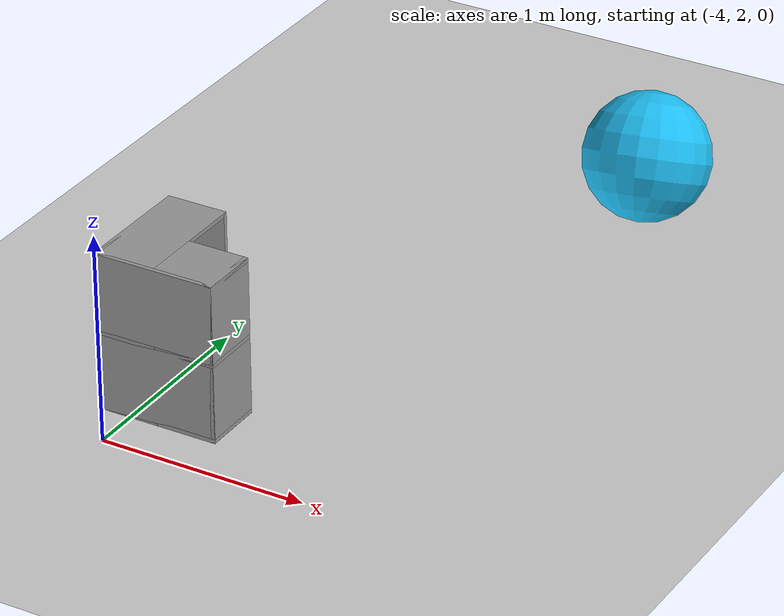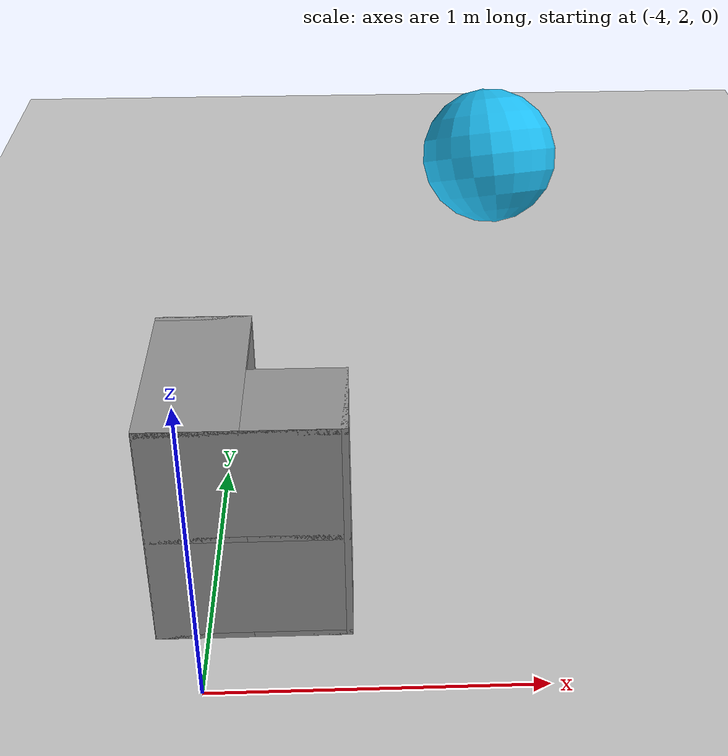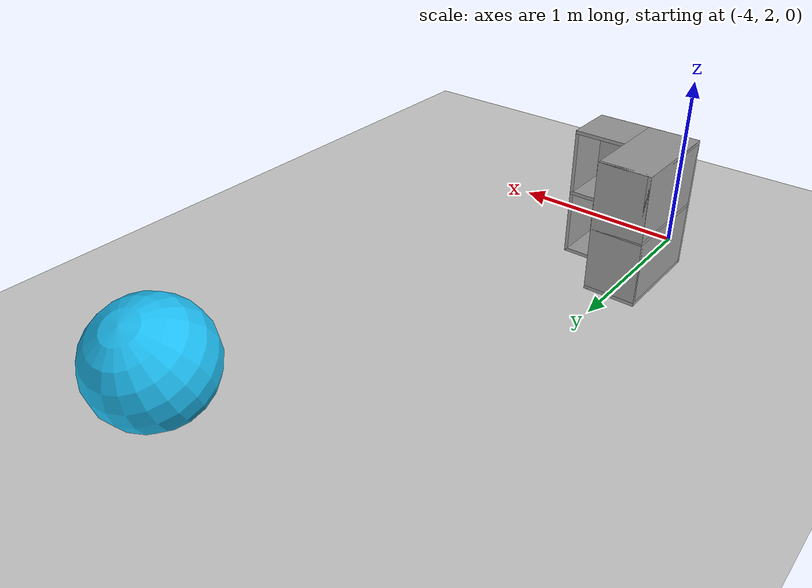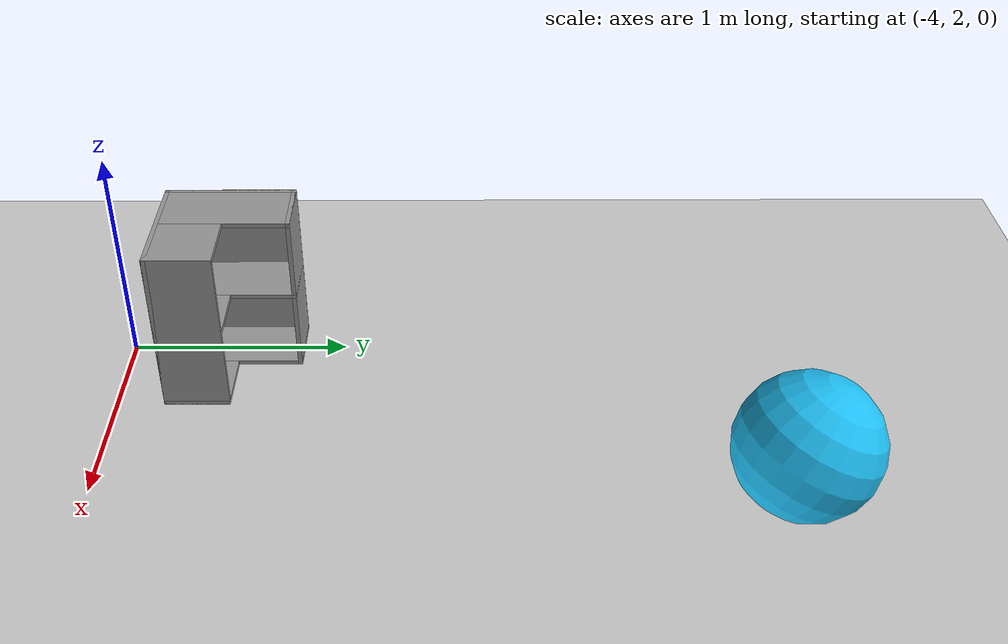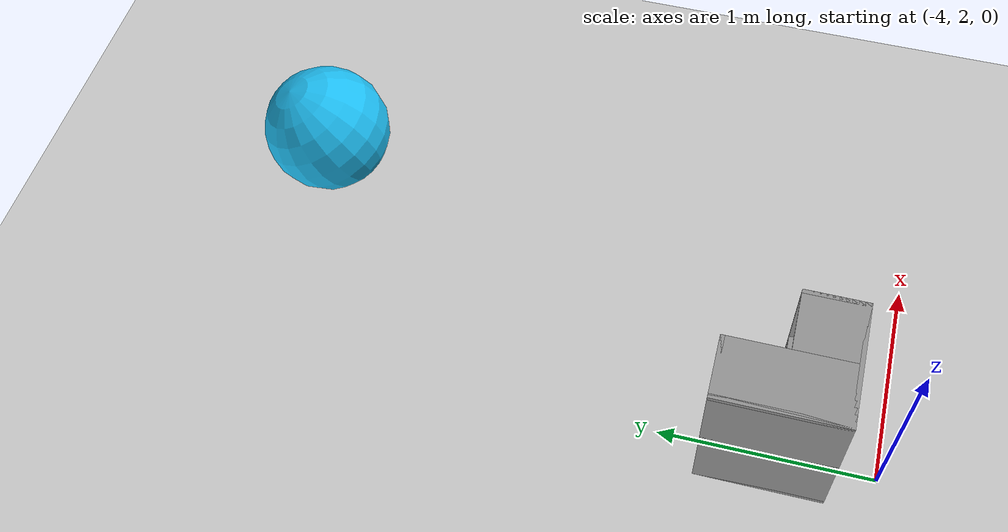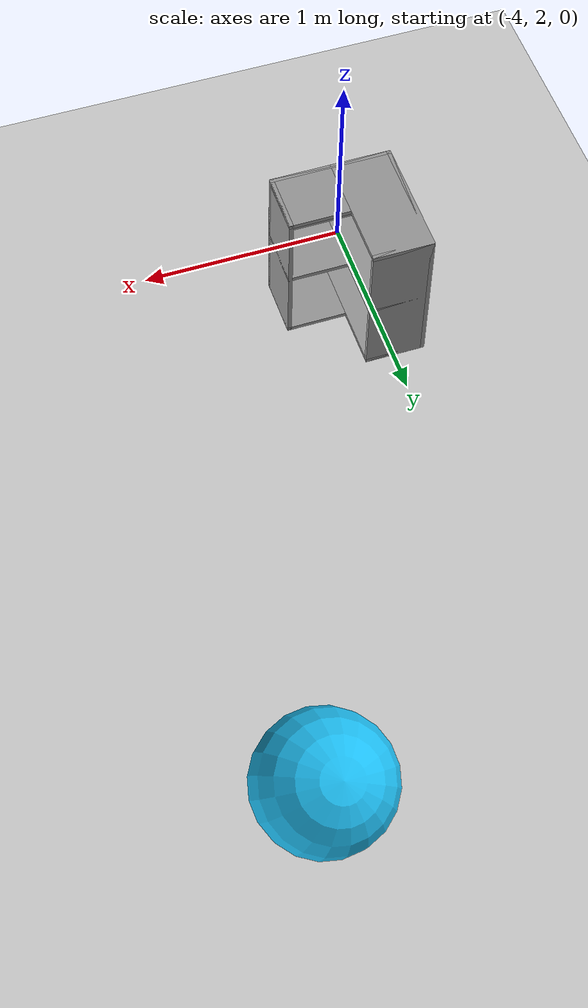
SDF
<sdf version="1.7">
 <world name="default">
  <model name="ground_plane">
   <static>1</static>
   <link name="link">
    <collision name="collision">
     <geometry><plane><normal>0 0 1</normal><size>100 100</size></plane></geometry>
     <surface><friction><ode><mu>100</mu><mu2>50</mu2></ode></friction></surface>
    </collision>
    <visual name="visual">
     <cast_shadows>0</cast_shadows>
     <geometry><plane><normal>0 0 1</normal><size>100 100</size></plane></geometry>
     <material>
      <script><uri>file://media/materials/scripts/gazebo.material</uri><name>Gazebo/Grey</name></script>
     </material>
    </visual>
   </link>
  </model>
  <model name="Wall_Cabinet_Coin_24x30W">
   <link name="Wall_10">
    <pose>0.286 -0.148 0.384 0 -0 0</pose>
    <inertial>
     <mass>2.1259</mass>
     <inertia><ixx>0.0158</ixx><iyy>0.1202</iyy><izz>0.1046</izz><ixy>0</ixy><ixz>0</ixz><iyz>0</iyz></inertia>
    </inertial>
    <collision name="Wall_10_Collision"><geometry><box><size>0.02 0.296 0.768</size></box></geometry></collision>
    <visual name="Wall_10_Visual">
     <geometry><box><size>0.02 0.296 0.768</size></box></geometry>
     <material>
      <script><uri>file://media/materials/scripts/gazebo.material</uri><name>Gazebo/Grey</name></script>
      <ambient>1 1 1 1</ambient>
     </material>
    </visual>
   </link>
   <joint name="10_16" type="fixed">
    <pose>0 0 -0.374 0 -0 0</pose>
    <parent>Wall_16</parent>
    <child>Wall_10</child>
    <axis><xyz>1 0 0</xyz><limit><lower>-1e+16</lower><upper>1e+16</upper></limit></axis>
   </joint>
   <joint name="10_14" type="fixed">
    <parent>Wall_14</parent>
    <child>Wall_10</child>
    <axis><xyz>1 0 0</xyz><limit><lower>-1e+16</lower><upper>1e+16</upper></limit></axis>
   </joint>
   <joint name="10_12" type="fixed">
    <pose>0 0 0.374 0 -0 0</pose>
    <parent>Wall_12</parent>
    <child>Wall_10</child>
    <axis><xyz>1 0 0</xyz><limit><lower>-1e+16</lower><upper>1e+16</upper></limit></axis>
   </joint>
   <joint name="10_29" type="fixed">
    <pose>0 -0.148 0 0 -0 0</pose>
    <parent>Wall_29</parent>
    <child>Wall_10</child>
    <axis><xyz>1 0 0</xyz><limit><lower>-1e+16</lower><upper>1e+16</upper></limit></axis>
   </joint>
   <link name="Wall_12">
    <pose>0.148 -0.148 0.758 0 -0 0</pose>
    <inertial>
     <mass>0.8802</mass>
     <inertia><ixx>0.0065</ixx><iyy>0.0139</iyy><izz>0.0074</izz><ixy>0</ixy><ixz>0</ixz><iyz>0</iyz></inertia>
    </inertial>
    <collision name="Wall_12_Collision"><geometry><box><size>0.296 0.296 0.02</size></box></geometry></collision>
    <visual name="Wall_12_Visual">
     <geometry><box><size>0.296 0.296 0.02</size></box></geometry>
     <material>
      <script><uri>file://media/materials/scripts/gazebo.material</uri><name>Gazebo/Grey</name></script>
      <ambient>1 1 1 1</ambient>
     </material>
    </visual>
   </link>
   <joint name="12_29" type="fixed">
    <pose>0 -0.148 0 0 -0 0</pose>
    <parent>Wall_29</parent>
    <child>Wall_12</child>
    <axis><xyz>0 0 1</xyz><limit><lower>-1e+16</lower><upper>1e+16</upper></limit></axis>
   </joint>
   <link name="Wall_14">
    <pose>0.148 -0.148 0.384 0 -0 0</pose>
    <inertial>
     <mass>0.8802</mass>
     <inertia><ixx>0.0065</ixx><iyy>0.0139</iyy><izz>0.0074</izz><ixy>0</ixy><ixz>0</ixz><iyz>0</iyz></inertia>
    </inertial>
    <collision name="Wall_14_Collision"><geometry><box><size>0.296 0.296 0.02</size></box></geometry></collision>
    <visual name="Wall_14_Visual">
     <geometry><box><size>0.296 0.296 0.02</size></box></geometry>
     <material>
      <script><uri>file://media/materials/scripts/gazebo.material</uri><name>Gazebo/Grey</name></script>
      <ambient>1 1 1 1</ambient>
     </material>
    </visual>
   </link>
   <joint name="14_29" type="fixed">
    <pose>0 -0.148 0 0 -0 0</pose>
    <parent>Wall_29</parent>
    <child>Wall_14</child>
    <axis><xyz>0 1 0</xyz><limit><lower>-1e+16</lower><upper>1e+16</upper></limit></axis>
   </joint>
   <link name="Wall_16">
    <pose>0.148 -0.148 0.01 0 -0 0</pose>
    <inertial>
     <mass>0.8802</mass>
     <inertia><ixx>0.0065</ixx><iyy>0.0139</iyy><izz>0.0074</izz><ixy>0</ixy><ixz>0</ixz><iyz>0</iyz></inertia>
    </inertial>
    <collision name="Wall_16_Collision"><geometry><box><size>0.296 0.296 0.02</size></box></geometry></collision>
    <visual name="Wall_16_Visual">
     <geometry><box><size>0.296 0.296 0.02</size></box></geometry>
     <material>
      <script><uri>file://media/materials/scripts/gazebo.material</uri><name>Gazebo/Grey</name></script>
      <ambient>1 1 1 1</ambient>
     </material>
    </visual>
   </link>
   <joint name="16_29" type="fixed">
    <pose>0 -0.148 0 0 -0 0</pose>
    <parent>Wall_29</parent>
    <child>Wall_16</child>
    <axis><xyz>0 1 0</xyz><limit><lower>-1e+16</lower><upper>1e+16</upper></limit></axis>
   </joint>
   <link name="Wall_18">
    <pose>-0.148 0 0.01 0 -0 0</pose>
    <inertial>
     <mass>1.6525</mass>
     <inertia><ixx>0.0491</ixx><iyy>0.0613</iyy><izz>0.0123</izz><ixy>0</ixy><ixz>0</ixz><iyz>0</iyz></inertia>
    </inertial>
    <collision name="Wall_18_Collision"><geometry><box><size>0.296 0.592 0.02</size></box></geometry></collision>
    <visual name="Wall_18_Visual">
     <geometry><box><size>0.296 0.592 0.02</size></box></geometry>
     <material>
      <script><uri>file://media/materials/scripts/gazebo.material</uri><name>Gazebo/Grey</name></script>
      <ambient>1 1 1 1</ambient>
     </material>
    </visual>
   </link>
   <joint name="18_16" type="fixed">
    <pose>0.148 -0.148 0 0 -0 0</pose>
    <parent>Wall_16</parent>
    <child>Wall_18</child>
    <axis><xyz>1 0 0</xyz><limit><lower>-1e+16</lower><upper>1e+16</upper></limit></axis>
   </joint>
   <joint name="18_29" type="fixed">
    <pose>0 -0.296 0 0 -0 0</pose>
    <parent>Wall_29</parent>
    <child>Wall_18</child>
    <axis><xyz>0 1 0</xyz><limit><lower>-1e+16</lower><upper>1e+16</upper></limit></axis>
   </joint>
   <joint name="18_27" type="fixed">
    <pose>-0.148 0 0 0 -0 0</pose>
    <parent>Wall_27</parent>
    <child>Wall_18</child>
    <axis><xyz>1 0 0</xyz><limit><lower>-1e+16</lower><upper>1e+16</upper></limit></axis>
   </joint>
   <joint name="18_30" type="fixed">
    <pose>0 0.296 0 0 -0 0</pose>
    <parent>Wall_30</parent>
    <child>Wall_18</child>
    <axis><xyz>0 1 0</xyz><limit><lower>-1e+16</lower><upper>1e+16</upper></limit></axis>
   </joint>
   <link name="Wall_20">
    <pose>-0.148 0 0.384 0 -0 0</pose>
    <inertial>
     <mass>1.6525</mass>
     <inertia><ixx>0.0491</ixx><iyy>0.0613</iyy><izz>0.0123</izz><ixy>0</ixy><ixz>0</ixz><iyz>0</iyz></inertia>
    </inertial>
    <collision name="Wall_20_Collision"><geometry><box><size>0.296 0.592 0.02</size></box></geometry></collision>
    <visual name="Wall_20_Visual">
     <geometry><box><size>0.296 0.592 0.02</size></box></geometry>
     <material>
      <script><uri>file://media/materials/scripts/gazebo.material</uri><name>Gazebo/Grey</name></script>
      <ambient>1 1 1 1</ambient>
     </material>
    </visual>
   </link>
   <joint name="20_14" type="fixed">
    <pose>0.148 -0.148 0 0 -0 0</pose>
    <parent>Wall_14</parent>
    <child>Wall_20</child>
    <axis><xyz>1 0 0</xyz><limit><lower>-1e+16</lower><upper>1e+16</upper></limit></axis>
   </joint>
   <joint name="20_29" type="fixed">
    <pose>0 -0.296 0 0 -0 0</pose>
    <parent>Wall_29</parent>
    <child>Wall_20</child>
    <axis><xyz>0 1 0</xyz><limit><lower>-1e+16</lower><upper>1e+16</upper></limit></axis>
   </joint>
   <joint name="20_27" type="fixed">
    <pose>-0.148 0 0 0 -0 0</pose>
    <parent>Wall_27</parent>
    <child>Wall_20</child>
    <axis><xyz>1 0 0</xyz><limit><lower>-1e+16</lower><upper>1e+16</upper></limit></axis>
   </joint>
   <joint name="20_30" type="fixed">
    <pose>0 0.296 0 0 -0 0</pose>
    <parent>Wall_30</parent>
    <child>Wall_20</child>
    <axis><xyz>0 1 0</xyz><limit><lower>-1e+16</lower><upper>1e+16</upper></limit></axis>
   </joint>
   <link name="Wall_22">
    <pose>-0.148 0 0.758 0 -0 0</pose>
    <inertial>
     <mass>1.6525</mass>
     <inertia><ixx>0.0491</ixx><iyy>0.0613</iyy><izz>0.0123</izz><ixy>0</ixy><ixz>0</ixz><iyz>0</iyz></inertia>
    </inertial>
    <collision name="Wall_22_Collision"><geometry><box><size>0.296 0.592 0.02</size></box></geometry></collision>
    <visual name="Wall_22_Visual">
     <geometry><box><size>0.296 0.592 0.02</size></box></geometry>
     <material>
      <script><uri>file://media/materials/scripts/gazebo.material</uri><name>Gazebo/Grey</name></script>
      <ambient>1 1 1 1</ambient>
     </material>
    </visual>
   </link>
   <joint name="22_12" type="fixed">
    <pose>0.148 -0.148 0 0 -0 0</pose>
    <parent>Wall_12</parent>
    <child>Wall_22</child>
    <axis><xyz>1 0 0</xyz><limit><lower>-1e+16</lower><upper>1e+16</upper></limit></axis>
   </joint>
   <joint name="22_29" type="fixed">
    <pose>0 -0.296 0 0 -0 0</pose>
    <parent>Wall_29</parent>
    <child>Wall_22</child>
    <axis><xyz>0 1 0</xyz><limit><lower>-1e+16</lower><upper>1e+16</upper></limit></axis>
   </joint>
   <joint name="22_27" type="fixed">
    <pose>-0.148 0 0 0 -0 0</pose>
    <parent>Wall_27</parent>
    <child>Wall_22</child>
    <axis><xyz>1 0 0</xyz><limit><lower>-1e+16</lower><upper>1e+16</upper></limit></axis>
   </joint>
   <joint name="22_30" type="fixed">
    <pose>0 0.296 0 0 -0 0</pose>
    <parent>Wall_30</parent>
    <child>Wall_22</child>
    <axis><xyz>0 1 0</xyz><limit><lower>-1e+16</lower><upper>1e+16</upper></limit></axis>
   </joint>
   <link name="Wall_27">
    <pose>-0.286 0 0.384 0 -0 0</pose>
    <inertial>
     <mass>4.2589</mass>
     <inertia><ixx>0.1266</ixx><iyy>0.3358</iyy><izz>0.2095</izz><ixy>0</ixy><ixz>0</ixz><iyz>0</iyz></inertia>
    </inertial>
    <collision name="Wall_27_Collision"><geometry><box><size>0.02 0.592 0.768</size></box></geometry></collision>
    <visual name="Wall_27_Visual">
     <geometry><box><size>0.02 0.592 0.768</size></box></geometry>
     <material>
      <script><uri>file://media/materials/scripts/gazebo.material</uri><name>Gazebo/Grey</name></script>
      <ambient>1 1 1 1</ambient>
     </material>
    </visual>
   </link>
   <joint name="27_30" type="fixed">
    <pose>0 0.296 0 0 -0 0</pose>
    <parent>Wall_30</parent>
    <child>Wall_27</child>
    <axis><xyz>0 1 0</xyz><limit><lower>-1e+16</lower><upper>1e+16</upper></limit></axis>
   </joint>
   <link name="Wall_29">
    <pose>0 -0.286 0.384 0 -0 0</pose>
    <inertial>
     <mass>4.3176</mass>
     <inertia><ixx>0.134</ixx><iyy>0.2091</iyy><izz>0.3428</izz><ixy>0</ixy><ixz>0</ixz><iyz>0</iyz></inertia>
    </inertial>
    <collision name="Wall_29_Collision"><geometry><box><size>0.592 0.02 0.768</size></box></geometry></collision>
    <visual name="Wall_29_Visual">
     <geometry><box><size>0.592 0.02 0.768</size></box></geometry>
     <material>
      <script><uri>file://media/materials/scripts/gazebo.material</uri><name>Gazebo/Grey</name></script>
      <ambient>1 1 1 1</ambient>
     </material>
    </visual>
   </link>
   <link name="Wall_30">
    <pose>-0.148 0.286 0.384 0 -0 0</pose>
    <inertial>
     <mass>2.1093</mass>
     <inertia><ixx>0.1021</ixx><iyy>0.0157</iyy><izz>0.1177</izz><ixy>0</ixy><ixz>0</ixz><iyz>0</iyz></inertia>
    </inertial>
    <collision name="Wall_30_Collision"><geometry><box><size>0.296 0.02 0.768</size></box></geometry></collision>
    <visual name="Wall_30_Visual">
     <geometry><box><size>0.296 0.02 0.768</size></box></geometry>
     <material>
      <script><uri>file://media/materials/scripts/gazebo.material</uri><name>Gazebo/Grey</name></script>
      <ambient>1 1 1 1</ambient>
     </material>
    </visual>
   </link>
   <static>1</static>
   <pose>-3.86335 2.51029 0 0 -0 0</pose>
  </model>
  <model name="aws_robomaker_residential_Ball_01">
   <link name="link">
    <inertial>
     <mass>0.12</mass>
     <inertia>
      <ixx>0.030752</ixx>
      <ixy>0</ixy>
      <ixz>0</ixz>
      <iyy>0.030752</iyy>
      <iyz>0</iyz>
      <izz>0.030752</izz>
     </inertia>
    </inertial>
    <collision name="collision">
     <geometry><sphere><radius>0.31</radius></sphere></geometry>
     <surface>
      <friction><ode><mu>0.85</mu><mu2>0.85</mu2></ode></friction>
      <contact><ode><kd>8500</kd><max_vel>5.1</max_vel></ode></contact>
     </surface>
    </collision>
    <visual name="visual">
     <geometry><sphere><radius>0.31</radius></sphere></geometry>
     <material><diffuse>0.12 0.76 0.97 1</diffuse><ambient>0.03 0.21 0.27 1</ambient></material>
     <meta><layer>1</layer></meta>
    </visual>
   </link>
   <pose>-2.90824 4.93605 0.30999 -0.259211 0.389887 1.17295</pose>
  </model>
 </world>
</sdf>
